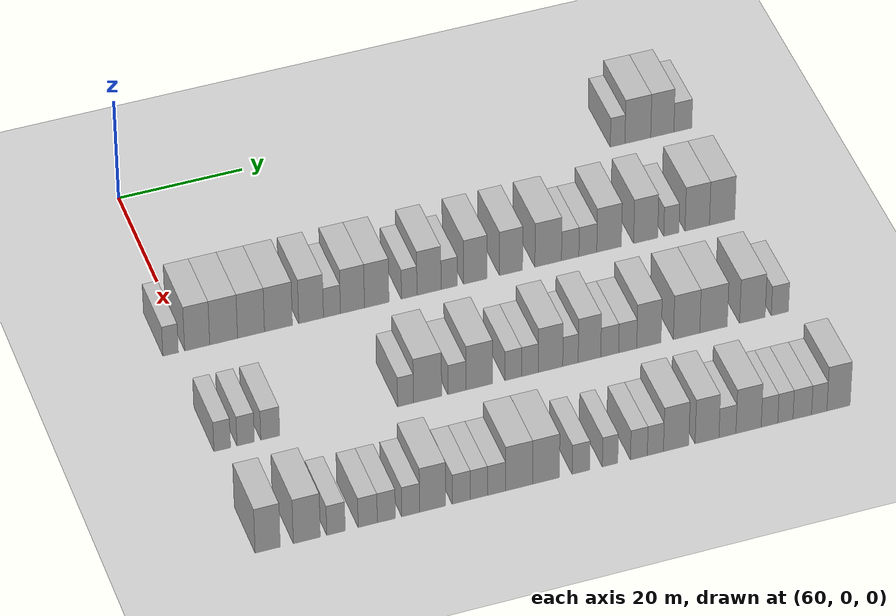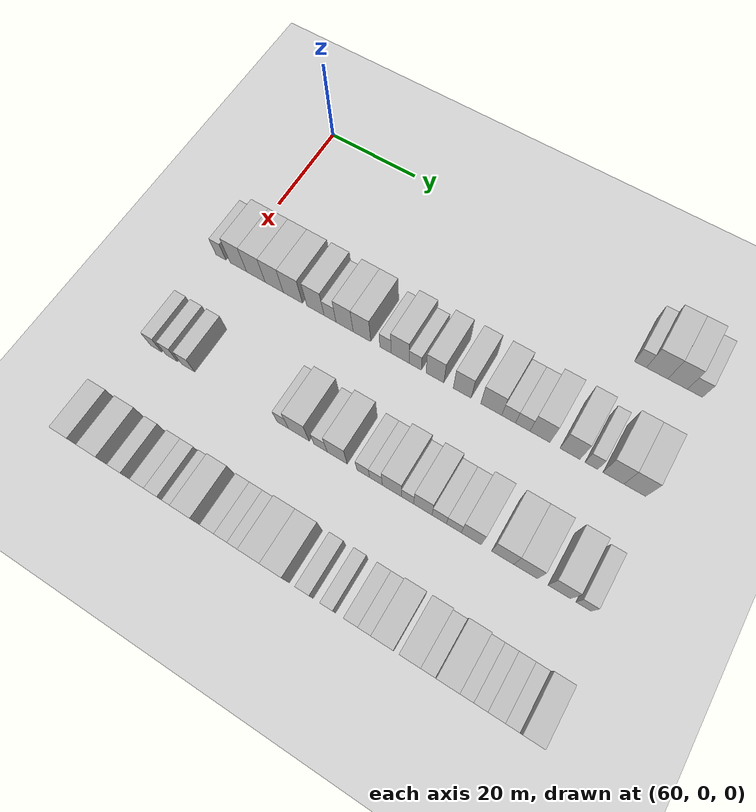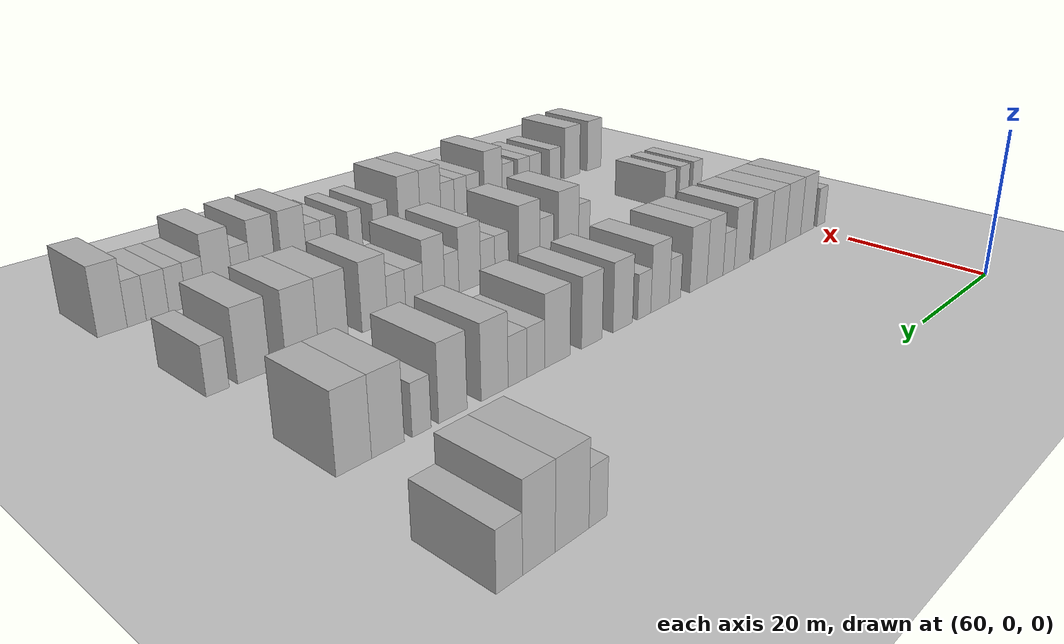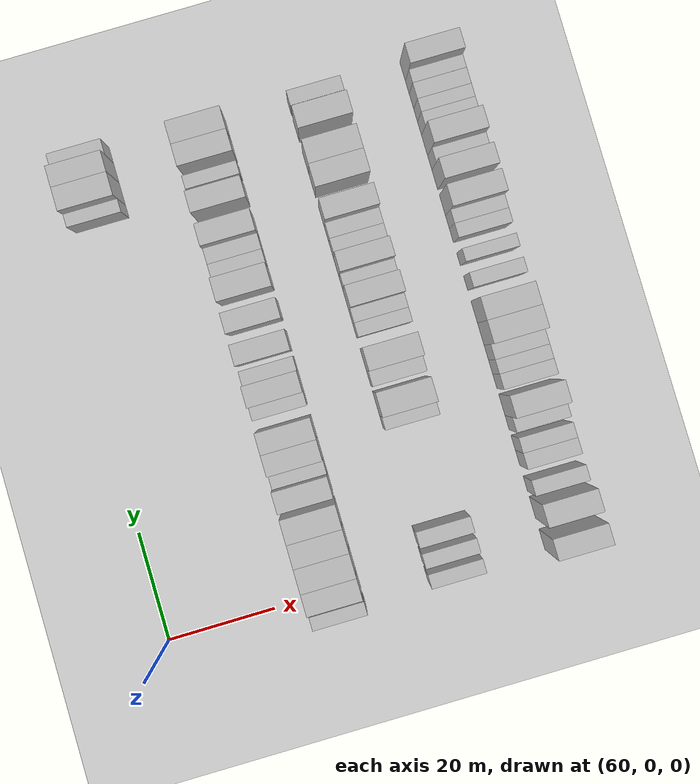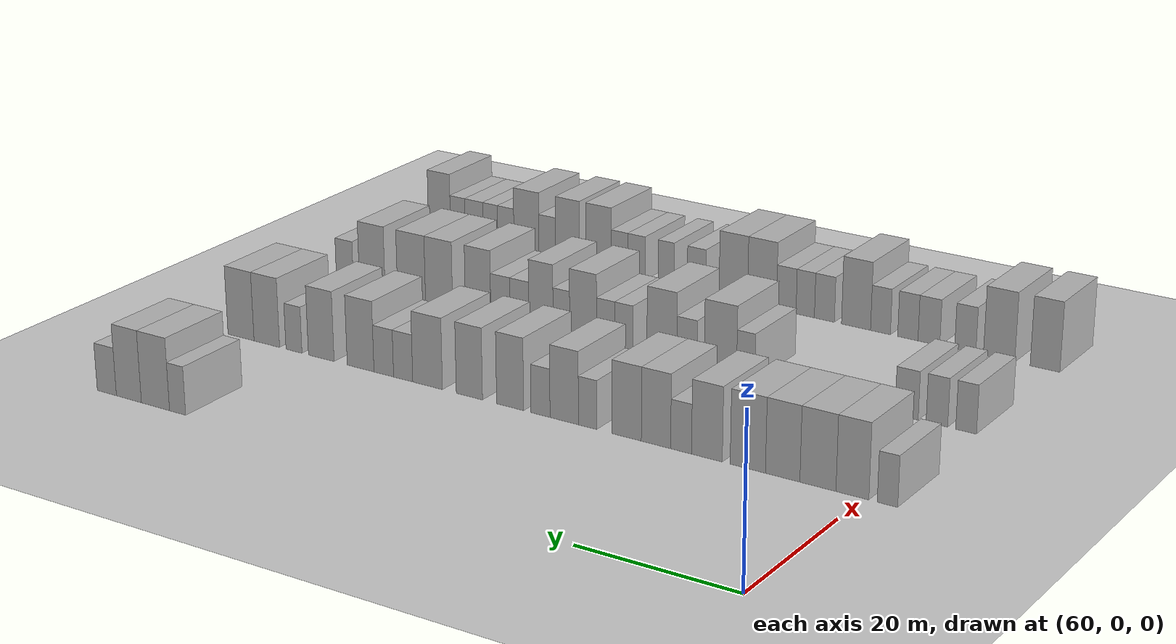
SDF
<sdf version="1.6">
 <world name="default">
  <include>
   <name>ground_plane_2</name>
   <uri>model://HANNAS_ground_plane</uri>
   <pose>100 0 0  0 0 0</pose>
  </include>
  <model name="building_480">
   <static>1</static>
   <pose>69.0000 77.1322 0 0.000000 0.000000 0.000000</pose>
   <link name="link">
    <pose>0 0 3.00 0 0 0</pose>
    <collision name="collision"><geometry><box><size>10.0000 2.4382 6.0000</size></box></geometry></collision>
    <visual name="visual">
     <cast_shadows>0</cast_shadows>
     <geometry><box><size>10.0000 2.4382 6.0000</size></box></geometry>
     <material>
      <script>
       <uri>model://HANNAS_wall/materials/scripts</uri>
       <uri>model://HANNAS_wall/materials/textures</uri>
       <name>vrc/HANNAS_wall</name>
      </script>
     </material>
    </visual>
   </link>
  </model>
  <model name="building_481">
   <static>1</static>
   <pose>69.0000 80.5037 0 0.000000 0.000000 0.000000</pose>
   <link name="link">
    <pose>0 0 4.50 0 0 0</pose>
    <collision name="collision"><geometry><box><size>10.0000 4.3048 9.0000</size></box></geometry></collision>
    <visual name="visual">
     <cast_shadows>0</cast_shadows>
     <geometry><box><size>10.0000 4.3048 9.0000</size></box></geometry>
     <material>
      <script>
       <uri>model://HANNAS_wall/materials/scripts</uri>
       <uri>model://HANNAS_wall/materials/textures</uri>
       <name>vrc/HANNAS_wall</name>
      </script>
     </material>
    </visual>
   </link>
  </model>
  <model name="building_482">
   <static>1</static>
   <pose>69.0000 84.5991 0 0.000000 0.000000 0.000000</pose>
   <link name="link">
    <pose>0 0 4.50 0 0 0</pose>
    <collision name="collision"><geometry><box><size>10.0000 3.8859 9.0000</size></box></geometry></collision>
    <visual name="visual">
     <cast_shadows>0</cast_shadows>
     <geometry><box><size>10.0000 3.8859 9.0000</size></box></geometry>
     <material>
      <script>
       <uri>model://HANNAS_wall/materials/scripts</uri>
       <uri>model://HANNAS_wall/materials/textures</uri>
       <name>vrc/HANNAS_wall</name>
      </script>
     </material>
    </visual>
   </link>
  </model>
  <model name="building_483">
   <static>1</static>
   <pose>69.0000 88.0368 0 0.000000 0.000000 0.000000</pose>
   <link name="link">
    <pose>0 0 3.00 0 0 0</pose>
    <collision name="collision"><geometry><box><size>10.0000 2.9896 6.0000</size></box></geometry></collision>
    <visual name="visual">
     <cast_shadows>0</cast_shadows>
     <geometry><box><size>10.0000 2.9896 6.0000</size></box></geometry>
     <material>
      <script>
       <uri>model://HANNAS_wall/materials/scripts</uri>
       <uri>model://HANNAS_wall/materials/textures</uri>
       <name>vrc/HANNAS_wall</name>
      </script>
     </material>
    </visual>
   </link>
  </model>
  <model name="building_653">
   <static>1</static>
   <pose>91.0000 -2.7565 0 0.000000 0.000000 0.000000</pose>
   <link name="link">
    <pose>0 0 3.00 0 0 0</pose>
    <collision name="collision"><geometry><box><size>10.0000 2.4277 6.0000</size></box></geometry></collision>
    <visual name="visual">
     <cast_shadows>0</cast_shadows>
     <geometry><box><size>10.0000 2.4277 6.0000</size></box></geometry>
     <material>
      <script>
       <uri>model://HANNAS_wall/materials/scripts</uri>
       <uri>model://HANNAS_wall/materials/textures</uri>
       <name>vrc/HANNAS_wall</name>
      </script>
     </material>
    </visual>
   </link>
  </model>
  <model name="building_654">
   <static>1</static>
   <pose>91.0000 1.4361 0 0.000000 0.000000 0.000000</pose>
   <link name="link">
    <pose>0 0 4.50 0 0 0</pose>
    <collision name="collision"><geometry><box><size>10.0000 3.9575 9.0000</size></box></geometry></collision>
    <visual name="visual">
     <cast_shadows>0</cast_shadows>
     <geometry><box><size>10.0000 3.9575 9.0000</size></box></geometry>
     <material>
      <script>
       <uri>model://HANNAS_wall/materials/scripts</uri>
       <uri>model://HANNAS_wall/materials/textures</uri>
       <name>vrc/HANNAS_wall</name>
      </script>
     </material>
    </visual>
   </link>
  </model>
  <model name="building_655">
   <static>1</static>
   <pose>91.0000 5.6165 0 0.000000 0.000000 0.000000</pose>
   <link name="link">
    <pose>0 0 4.50 0 0 0</pose>
    <collision name="collision"><geometry><box><size>10.0000 4.4033 9.0000</size></box></geometry></collision>
    <visual name="visual">
     <cast_shadows>0</cast_shadows>
     <geometry><box><size>10.0000 4.4033 9.0000</size></box></geometry>
     <material>
      <script>
       <uri>model://HANNAS_wall/materials/scripts</uri>
       <uri>model://HANNAS_wall/materials/textures</uri>
       <name>vrc/HANNAS_wall</name>
      </script>
     </material>
    </visual>
   </link>
  </model>
  <model name="building_656">
   <static>1</static>
   <pose>91.0000 9.9535 0 0.000000 0.000000 0.000000</pose>
   <link name="link">
    <pose>0 0 4.50 0 0 0</pose>
    <collision name="collision"><geometry><box><size>10.0000 4.2708 9.0000</size></box></geometry></collision>
    <visual name="visual">
     <cast_shadows>0</cast_shadows>
     <geometry><box><size>10.0000 4.2708 9.0000</size></box></geometry>
     <material>
      <script>
       <uri>model://HANNAS_wall/materials/scripts</uri>
       <uri>model://HANNAS_wall/materials/textures</uri>
       <name>vrc/HANNAS_wall</name>
      </script>
     </material>
    </visual>
   </link>
  </model>
  <model name="building_657">
   <static>1</static>
   <pose>91.0000 14.3061 0 0.000000 0.000000 0.000000</pose>
   <link name="link">
    <pose>0 0 4.50 0 0 0</pose>
    <collision name="collision"><geometry><box><size>10.0000 4.4345 9.0000</size></box></geometry></collision>
    <visual name="visual">
     <cast_shadows>0</cast_shadows>
     <geometry><box><size>10.0000 4.4345 9.0000</size></box></geometry>
     <material>
      <script>
       <uri>model://HANNAS_wall/materials/scripts</uri>
       <uri>model://HANNAS_wall/materials/textures</uri>
       <name>vrc/HANNAS_wall</name>
      </script>
     </material>
    </visual>
   </link>
  </model>
  <model name="building_658">
   <static>1</static>
   <pose>91.0000 19.4960 0 0.000000 0.000000 0.000000</pose>
   <link name="link">
    <pose>0 0 4.50 0 0 0</pose>
    <collision name="collision"><geometry><box><size>10.0000 3.9454 9.0000</size></box></geometry></collision>
    <visual name="visual">
     <cast_shadows>0</cast_shadows>
     <geometry><box><size>10.0000 3.9454 9.0000</size></box></geometry>
     <material>
      <script>
       <uri>model://HANNAS_wall/materials/scripts</uri>
       <uri>model://HANNAS_wall/materials/textures</uri>
       <name>vrc/HANNAS_wall</name>
      </script>
     </material>
    </visual>
   </link>
  </model>
  <model name="building_659">
   <static>1</static>
   <pose>91.0000 22.8226 0 0.000000 0.000000 0.000000</pose>
   <link name="link">
    <pose>0 0 3.00 0 0 0</pose>
    <collision name="collision"><geometry><box><size>10.0000 2.7078 6.0000</size></box></geometry></collision>
    <visual name="visual">
     <cast_shadows>0</cast_shadows>
     <geometry><box><size>10.0000 2.7078 6.0000</size></box></geometry>
     <material>
      <script>
       <uri>model://HANNAS_wall/materials/scripts</uri>
       <uri>model://HANNAS_wall/materials/textures</uri>
       <name>vrc/HANNAS_wall</name>
      </script>
     </material>
    </visual>
   </link>
  </model>
  <model name="building_660">
   <static>1</static>
   <pose>91.0000 26.0993 0 0.000000 0.000000 0.000000</pose>
   <link name="link">
    <pose>0 0 4.50 0 0 0</pose>
    <collision name="collision"><geometry><box><size>10.0000 3.8456 9.0000</size></box></geometry></collision>
    <visual name="visual">
     <cast_shadows>0</cast_shadows>
     <geometry><box><size>10.0000 3.8456 9.0000</size></box></geometry>
     <material>
      <script>
       <uri>model://HANNAS_wall/materials/scripts</uri>
       <uri>model://HANNAS_wall/materials/textures</uri>
       <name>vrc/HANNAS_wall</name>
      </script>
     </material>
    </visual>
   </link>
  </model>
  <model name="building_661">
   <static>1</static>
   <pose>91.0000 29.9905 0 0.000000 0.000000 0.000000</pose>
   <link name="link">
    <pose>0 0 4.50 0 0 0</pose>
    <collision name="collision"><geometry><box><size>10.0000 3.9366 9.0000</size></box></geometry></collision>
    <visual name="visual">
     <cast_shadows>0</cast_shadows>
     <geometry><box><size>10.0000 3.9366 9.0000</size></box></geometry>
     <material>
      <script>
       <uri>model://HANNAS_wall/materials/scripts</uri>
       <uri>model://HANNAS_wall/materials/textures</uri>
       <name>vrc/HANNAS_wall</name>
      </script>
     </material>
    </visual>
   </link>
  </model>
  <model name="building_662">
   <static>1</static>
   <pose>91.0000 35.2042 0 0.000000 0.000000 0.000000</pose>
   <link name="link">
    <pose>0 0 3.00 0 0 0</pose>
    <collision name="collision"><geometry><box><size>10.0000 2.4910 6.0000</size></box></geometry></collision>
    <visual name="visual">
     <cast_shadows>0</cast_shadows>
     <geometry><box><size>10.0000 2.4910 6.0000</size></box></geometry>
     <material>
      <script>
       <uri>model://HANNAS_wall/materials/scripts</uri>
       <uri>model://HANNAS_wall/materials/textures</uri>
       <name>vrc/HANNAS_wall</name>
      </script>
     </material>
    </visual>
   </link>
  </model>
  <model name="building_663">
   <static>1</static>
   <pose>91.0000 38.3889 0 0.000000 0.000000 0.000000</pose>
   <link name="link">
    <pose>0 0 4.50 0 0 0</pose>
    <collision name="collision"><geometry><box><size>10.0000 3.8784 9.0000</size></box></geometry></collision>
    <visual name="visual">
     <cast_shadows>0</cast_shadows>
     <geometry><box><size>10.0000 3.8784 9.0000</size></box></geometry>
     <material>
      <script>
       <uri>model://HANNAS_wall/materials/scripts</uri>
       <uri>model://HANNAS_wall/materials/textures</uri>
       <name>vrc/HANNAS_wall</name>
      </script>
     </material>
    </visual>
   </link>
  </model>
  <model name="building_664">
   <static>1</static>
   <pose>91.0000 41.6538 0 0.000000 0.000000 0.000000</pose>
   <link name="link">
    <pose>0 0 3.00 0 0 0</pose>
    <collision name="collision"><geometry><box><size>10.0000 2.6514 6.0000</size></box></geometry></collision>
    <visual name="visual">
     <cast_shadows>0</cast_shadows>
     <geometry><box><size>10.0000 2.6514 6.0000</size></box></geometry>
     <material>
      <script>
       <uri>model://HANNAS_wall/materials/scripts</uri>
       <uri>model://HANNAS_wall/materials/textures</uri>
       <name>vrc/HANNAS_wall</name>
      </script>
     </material>
    </visual>
   </link>
  </model>
  <model name="building_665">
   <static>1</static>
   <pose>91.0000 45.8766 0 0.000000 0.000000 0.000000</pose>
   <link name="link">
    <pose>0 0 4.50 0 0 0</pose>
    <collision name="collision"><geometry><box><size>10.0000 3.7941 9.0000</size></box></geometry></collision>
    <visual name="visual">
     <cast_shadows>0</cast_shadows>
     <geometry><box><size>10.0000 3.7941 9.0000</size></box></geometry>
     <material>
      <script>
       <uri>model://HANNAS_wall/materials/scripts</uri>
       <uri>model://HANNAS_wall/materials/textures</uri>
       <name>vrc/HANNAS_wall</name>
      </script>
     </material>
    </visual>
   </link>
  </model>
  <model name="building_666">
   <static>1</static>
   <pose>91.0000 51.6459 0 0.000000 0.000000 0.000000</pose>
   <link name="link">
    <pose>0 0 4.50 0 0 0</pose>
    <collision name="collision"><geometry><box><size>10.0000 3.7446 9.0000</size></box></geometry></collision>
    <visual name="visual">
     <cast_shadows>0</cast_shadows>
     <geometry><box><size>10.0000 3.7446 9.0000</size></box></geometry>
     <material>
      <script>
       <uri>model://HANNAS_wall/materials/scripts</uri>
       <uri>model://HANNAS_wall/materials/textures</uri>
       <name>vrc/HANNAS_wall</name>
      </script>
     </material>
    </visual>
   </link>
  </model>
  <model name="building_667">
   <static>1</static>
   <pose>91.0000 57.6847 0 0.000000 0.000000 0.000000</pose>
   <link name="link">
    <pose>0 0 4.50 0 0 0</pose>
    <collision name="collision"><geometry><box><size>10.0000 4.3330 9.0000</size></box></geometry></collision>
    <visual name="visual">
     <cast_shadows>0</cast_shadows>
     <geometry><box><size>10.0000 4.3330 9.0000</size></box></geometry>
     <material>
      <script>
       <uri>model://HANNAS_wall/materials/scripts</uri>
       <uri>model://HANNAS_wall/materials/textures</uri>
       <name>vrc/HANNAS_wall</name>
      </script>
     </material>
    </visual>
   </link>
  </model>
  <model name="building_668">
   <static>1</static>
   <pose>91.0000 61.2664 0 0.000000 0.000000 0.000000</pose>
   <link name="link">
    <pose>0 0 3.00 0 0 0</pose>
    <collision name="collision"><geometry><box><size>10.0000 2.8304 6.0000</size></box></geometry></collision>
    <visual name="visual">
     <cast_shadows>0</cast_shadows>
     <geometry><box><size>10.0000 2.8304 6.0000</size></box></geometry>
     <material>
      <script>
       <uri>model://HANNAS_wall/materials/scripts</uri>
       <uri>model://HANNAS_wall/materials/textures</uri>
       <name>vrc/HANNAS_wall</name>
      </script>
     </material>
    </visual>
   </link>
  </model>
  <model name="building_669">
   <static>1</static>
   <pose>91.0000 64.1423 0 0.000000 0.000000 0.000000</pose>
   <link name="link">
    <pose>0 0 3.00 0 0 0</pose>
    <collision name="collision"><geometry><box><size>10.0000 2.9213 6.0000</size></box></geometry></collision>
    <visual name="visual">
     <cast_shadows>0</cast_shadows>
     <geometry><box><size>10.0000 2.9213 6.0000</size></box></geometry>
     <material>
      <script>
       <uri>model://HANNAS_wall/materials/scripts</uri>
       <uri>model://HANNAS_wall/materials/textures</uri>
       <name>vrc/HANNAS_wall</name>
      </script>
     </material>
    </visual>
   </link>
  </model>
  <model name="building_670">
   <static>1</static>
   <pose>91.0000 67.6167 0 0.000000 0.000000 0.000000</pose>
   <link name="link">
    <pose>0 0 4.50 0 0 0</pose>
    <collision name="collision"><geometry><box><size>10.0000 4.0274 9.0000</size></box></geometry></collision>
    <visual name="visual">
     <cast_shadows>0</cast_shadows>
     <geometry><box><size>10.0000 4.0274 9.0000</size></box></geometry>
     <material>
      <script>
       <uri>model://HANNAS_wall/materials/scripts</uri>
       <uri>model://HANNAS_wall/materials/textures</uri>
       <name>vrc/HANNAS_wall</name>
      </script>
     </material>
    </visual>
   </link>
  </model>
  <model name="building_671">
   <static>1</static>
   <pose>91.0000 73.6029 0 0.000000 0.000000 0.000000</pose>
   <link name="link">
    <pose>0 0 4.50 0 0 0</pose>
    <collision name="collision"><geometry><box><size>10.0000 3.9450 9.0000</size></box></geometry></collision>
    <visual name="visual">
     <cast_shadows>0</cast_shadows>
     <geometry><box><size>10.0000 3.9450 9.0000</size></box></geometry>
     <material>
      <script>
       <uri>model://HANNAS_wall/materials/scripts</uri>
       <uri>model://HANNAS_wall/materials/textures</uri>
       <name>vrc/HANNAS_wall</name>
      </script>
     </material>
    </visual>
   </link>
  </model>
  <model name="building_672">
   <static>1</static>
   <pose>91.0000 77.8221 0 0.000000 0.000000 0.000000</pose>
   <link name="link">
    <pose>0 0 3.00 0 0 0</pose>
    <collision name="collision"><geometry><box><size>10.0000 2.4935 6.0000</size></box></geometry></collision>
    <visual name="visual">
     <cast_shadows>0</cast_shadows>
     <geometry><box><size>10.0000 2.4935 6.0000</size></box></geometry>
     <material>
      <script>
       <uri>model://HANNAS_wall/materials/scripts</uri>
       <uri>model://HANNAS_wall/materials/textures</uri>
       <name>vrc/HANNAS_wall</name>
      </script>
     </material>
    </visual>
   </link>
  </model>
  <model name="building_673">
   <static>1</static>
   <pose>91.0000 82.0843 0 0.000000 0.000000 0.000000</pose>
   <link name="link">
    <pose>0 0 4.50 0 0 0</pose>
    <collision name="collision"><geometry><box><size>10.0000 4.0307 9.0000</size></box></geometry></collision>
    <visual name="visual">
     <cast_shadows>0</cast_shadows>
     <geometry><box><size>10.0000 4.0307 9.0000</size></box></geometry>
     <material>
      <script>
       <uri>model://HANNAS_wall/materials/scripts</uri>
       <uri>model://HANNAS_wall/materials/textures</uri>
       <name>vrc/HANNAS_wall</name>
      </script>
     </material>
    </visual>
   </link>
  </model>
  <model name="building_674">
   <static>1</static>
   <pose>91.0000 86.1808 0 0.000000 0.000000 0.000000</pose>
   <link name="link">
    <pose>0 0 4.50 0 0 0</pose>
    <collision name="collision"><geometry><box><size>10.0000 4.1624 9.0000</size></box></geometry></collision>
    <visual name="visual">
     <cast_shadows>0</cast_shadows>
     <geometry><box><size>10.0000 4.1624 9.0000</size></box></geometry>
     <material>
      <script>
       <uri>model://HANNAS_wall/materials/scripts</uri>
       <uri>model://HANNAS_wall/materials/textures</uri>
       <name>vrc/HANNAS_wall</name>
      </script>
     </material>
    </visual>
   </link>
  </model>
  <model name="building_841">
   <static>1</static>
   <pose>113.0000 -1.5470 0 0.000000 0.000000 0.000000</pose>
   <link name="link">
    <pose>0 0 3.00 0 0 0</pose>
    <collision name="collision"><geometry><box><size>10.0000 2.5776 6.0000</size></box></geometry></collision>
    <visual name="visual">
     <cast_shadows>0</cast_shadows>
     <geometry><box><size>10.0000 2.5776 6.0000</size></box></geometry>
     <material>
      <script>
       <uri>model://HANNAS_wall/materials/scripts</uri>
       <uri>model://HANNAS_wall/materials/textures</uri>
       <name>vrc/HANNAS_wall</name>
      </script>
     </material>
    </visual>
   </link>
  </model>
  <model name="building_842">
   <static>1</static>
   <pose>113.0000 2.0966 0 0.000000 0.000000 0.000000</pose>
   <link name="link">
    <pose>0 0 3.00 0 0 0</pose>
    <collision name="collision"><geometry><box><size>10.0000 2.7095 6.0000</size></box></geometry></collision>
    <visual name="visual">
     <cast_shadows>0</cast_shadows>
     <geometry><box><size>10.0000 2.7095 6.0000</size></box></geometry>
     <material>
      <script>
       <uri>model://HANNAS_wall/materials/scripts</uri>
       <uri>model://HANNAS_wall/materials/textures</uri>
       <name>vrc/HANNAS_wall</name>
      </script>
     </material>
    </visual>
   </link>
  </model>
  <model name="building_843">
   <static>1</static>
   <pose>113.0000 5.9287 0 0.000000 0.000000 0.000000</pose>
   <link name="link">
    <pose>0 0 3.00 0 0 0</pose>
    <collision name="collision"><geometry><box><size>10.0000 2.9547 6.0000</size></box></geometry></collision>
    <visual name="visual">
     <cast_shadows>0</cast_shadows>
     <geometry><box><size>10.0000 2.9547 6.0000</size></box></geometry>
     <material>
      <script>
       <uri>model://HANNAS_wall/materials/scripts</uri>
       <uri>model://HANNAS_wall/materials/textures</uri>
       <name>vrc/HANNAS_wall</name>
      </script>
     </material>
    </visual>
   </link>
  </model>
  <model name="building_844">
   <static>1</static>
   <pose>113.0000 27.1335 0 0.000000 0.000000 0.000000</pose>
   <link name="link">
    <pose>0 0 3.00 0 0 0</pose>
    <collision name="collision"><geometry><box><size>10.0000 2.4849 6.0000</size></box></geometry></collision>
    <visual name="visual">
     <cast_shadows>0</cast_shadows>
     <geometry><box><size>10.0000 2.4849 6.0000</size></box></geometry>
     <material>
      <script>
       <uri>model://HANNAS_wall/materials/scripts</uri>
       <uri>model://HANNAS_wall/materials/textures</uri>
       <name>vrc/HANNAS_wall</name>
      </script>
     </material>
    </visual>
   </link>
  </model>
  <model name="building_845">
   <static>1</static>
   <pose>113.0000 30.6043 0 0.000000 0.000000 0.000000</pose>
   <link name="link">
    <pose>0 0 4.50 0 0 0</pose>
    <collision name="collision"><geometry><box><size>10.0000 4.4568 9.0000</size></box></geometry></collision>
    <visual name="visual">
     <cast_shadows>0</cast_shadows>
     <geometry><box><size>10.0000 4.4568 9.0000</size></box></geometry>
     <material>
      <script>
       <uri>model://HANNAS_wall/materials/scripts</uri>
       <uri>model://HANNAS_wall/materials/textures</uri>
       <name>vrc/HANNAS_wall</name>
      </script>
     </material>
    </visual>
   </link>
  </model>
  <model name="building_846">
   <static>1</static>
   <pose>113.0000 35.2597 0 0.000000 0.000000 0.000000</pose>
   <link name="link">
    <pose>0 0 3.00 0 0 0</pose>
    <collision name="collision"><geometry><box><size>10.0000 2.8541 6.0000</size></box></geometry></collision>
    <visual name="visual">
     <cast_shadows>0</cast_shadows>
     <geometry><box><size>10.0000 2.8541 6.0000</size></box></geometry>
     <material>
      <script>
       <uri>model://HANNAS_wall/materials/scripts</uri>
       <uri>model://HANNAS_wall/materials/textures</uri>
       <name>vrc/HANNAS_wall</name>
      </script>
     </material>
    </visual>
   </link>
  </model>
  <model name="building_847">
   <static>1</static>
   <pose>113.0000 38.7917 0 0.000000 0.000000 0.000000</pose>
   <link name="link">
    <pose>0 0 4.50 0 0 0</pose>
    <collision name="collision"><geometry><box><size>10.0000 4.2098 9.0000</size></box></geometry></collision>
    <visual name="visual">
     <cast_shadows>0</cast_shadows>
     <geometry><box><size>10.0000 4.2098 9.0000</size></box></geometry>
     <material>
      <script>
       <uri>model://HANNAS_wall/materials/scripts</uri>
       <uri>model://HANNAS_wall/materials/textures</uri>
       <name>vrc/HANNAS_wall</name>
      </script>
     </material>
    </visual>
   </link>
  </model>
  <model name="building_848">
   <static>1</static>
   <pose>113.0000 44.2140 0 0.000000 0.000000 0.000000</pose>
   <link name="link">
    <pose>0 0 3.00 0 0 0</pose>
    <collision name="collision"><geometry><box><size>10.0000 2.6349 6.0000</size></box></geometry></collision>
    <visual name="visual">
     <cast_shadows>0</cast_shadows>
     <geometry><box><size>10.0000 2.6349 6.0000</size></box></geometry>
     <material>
      <script>
       <uri>model://HANNAS_wall/materials/scripts</uri>
       <uri>model://HANNAS_wall/materials/textures</uri>
       <name>vrc/HANNAS_wall</name>
      </script>
     </material>
    </visual>
   </link>
  </model>
  <model name="building_849">
   <static>1</static>
   <pose>113.0000 46.8538 0 0.000000 0.000000 0.000000</pose>
   <link name="link">
    <pose>0 0 3.00 0 0 0</pose>
    <collision name="collision"><geometry><box><size>10.0000 2.6447 6.0000</size></box></geometry></collision>
    <visual name="visual">
     <cast_shadows>0</cast_shadows>
     <geometry><box><size>10.0000 2.6447 6.0000</size></box></geometry>
     <material>
      <script>
       <uri>model://HANNAS_wall/materials/scripts</uri>
       <uri>model://HANNAS_wall/materials/textures</uri>
       <name>vrc/HANNAS_wall</name>
      </script>
     </material>
    </visual>
   </link>
  </model>
  <model name="building_850">
   <static>1</static>
   <pose>113.0000 50.1375 0 0.000000 0.000000 0.000000</pose>
   <link name="link">
    <pose>0 0 4.50 0 0 0</pose>
    <collision name="collision"><geometry><box><size>10.0000 3.9228 9.0000</size></box></geometry></collision>
    <visual name="visual">
     <cast_shadows>0</cast_shadows>
     <geometry><box><size>10.0000 3.9228 9.0000</size></box></geometry>
     <material>
      <script>
       <uri>model://HANNAS_wall/materials/scripts</uri>
       <uri>model://HANNAS_wall/materials/textures</uri>
       <name>vrc/HANNAS_wall</name>
      </script>
     </material>
    </visual>
   </link>
  </model>
  <model name="building_851">
   <static>1</static>
   <pose>113.0000 53.3275 0 0.000000 0.000000 0.000000</pose>
   <link name="link">
    <pose>0 0 3.00 0 0 0</pose>
    <collision name="collision"><geometry><box><size>10.0000 2.4571 6.0000</size></box></geometry></collision>
    <visual name="visual">
     <cast_shadows>0</cast_shadows>
     <geometry><box><size>10.0000 2.4571 6.0000</size></box></geometry>
     <material>
      <script>
       <uri>model://HANNAS_wall/materials/scripts</uri>
       <uri>model://HANNAS_wall/materials/textures</uri>
       <name>vrc/HANNAS_wall</name>
      </script>
     </material>
    </visual>
   </link>
  </model>
  <model name="building_852">
   <static>1</static>
   <pose>113.0000 56.3704 0 0.000000 0.000000 0.000000</pose>
   <link name="link">
    <pose>0 0 4.50 0 0 0</pose>
    <collision name="collision"><geometry><box><size>10.0000 3.6287 9.0000</size></box></geometry></collision>
    <visual name="visual">
     <cast_shadows>0</cast_shadows>
     <geometry><box><size>10.0000 3.6287 9.0000</size></box></geometry>
     <material>
      <script>
       <uri>model://HANNAS_wall/materials/scripts</uri>
       <uri>model://HANNAS_wall/materials/textures</uri>
       <name>vrc/HANNAS_wall</name>
      </script>
     </material>
    </visual>
   </link>
  </model>
  <model name="building_853">
   <static>1</static>
   <pose>113.0000 59.6178 0 0.000000 0.000000 0.000000</pose>
   <link name="link">
    <pose>0 0 3.00 0 0 0</pose>
    <collision name="collision"><geometry><box><size>10.0000 2.8660 6.0000</size></box></geometry></collision>
    <visual name="visual">
     <cast_shadows>0</cast_shadows>
     <geometry><box><size>10.0000 2.8660 6.0000</size></box></geometry>
     <material>
      <script>
       <uri>model://HANNAS_wall/materials/scripts</uri>
       <uri>model://HANNAS_wall/materials/textures</uri>
       <name>vrc/HANNAS_wall</name>
      </script>
     </material>
    </visual>
   </link>
  </model>
  <model name="building_854">
   <static>1</static>
   <pose>113.0000 62.5063 0 0.000000 0.000000 0.000000</pose>
   <link name="link">
    <pose>0 0 3.00 0 0 0</pose>
    <collision name="collision"><geometry><box><size>10.0000 2.9109 6.0000</size></box></geometry></collision>
    <visual name="visual">
     <cast_shadows>0</cast_shadows>
     <geometry><box><size>10.0000 2.9109 6.0000</size></box></geometry>
     <material>
      <script>
       <uri>model://HANNAS_wall/materials/scripts</uri>
       <uri>model://HANNAS_wall/materials/textures</uri>
       <name>vrc/HANNAS_wall</name>
      </script>
     </material>
    </visual>
   </link>
  </model>
  <model name="building_855">
   <static>1</static>
   <pose>113.0000 65.9159 0 0.000000 0.000000 0.000000</pose>
   <link name="link">
    <pose>0 0 4.50 0 0 0</pose>
    <collision name="collision"><geometry><box><size>10.0000 3.9084 9.0000</size></box></geometry></collision>
    <visual name="visual">
     <cast_shadows>0</cast_shadows>
     <geometry><box><size>10.0000 3.9084 9.0000</size></box></geometry>
     <material>
      <script>
       <uri>model://HANNAS_wall/materials/scripts</uri>
       <uri>model://HANNAS_wall/materials/textures</uri>
       <name>vrc/HANNAS_wall</name>
      </script>
     </material>
    </visual>
   </link>
  </model>
  <model name="building_856">
   <static>1</static>
   <pose>113.0000 72.0000 0 0.000000 0.000000 0.000000</pose>
   <link name="link">
    <pose>0 0 4.50 0 0 0</pose>
    <collision name="collision"><geometry><box><size>10.0000 4.2596 9.0000</size></box></geometry></collision>
    <visual name="visual">
     <cast_shadows>0</cast_shadows>
     <geometry><box><size>10.0000 4.2596 9.0000</size></box></geometry>
     <material>
      <script>
       <uri>model://HANNAS_wall/materials/scripts</uri>
       <uri>model://HANNAS_wall/materials/textures</uri>
       <name>vrc/HANNAS_wall</name>
      </script>
     </material>
    </visual>
   </link>
  </model>
  <model name="building_857">
   <static>1</static>
   <pose>113.0000 76.3529 0 0.000000 0.000000 0.000000</pose>
   <link name="link">
    <pose>0 0 4.50 0 0 0</pose>
    <collision name="collision"><geometry><box><size>10.0000 4.4462 9.0000</size></box></geometry></collision>
    <visual name="visual">
     <cast_shadows>0</cast_shadows>
     <geometry><box><size>10.0000 4.4462 9.0000</size></box></geometry>
     <material>
      <script>
       <uri>model://HANNAS_wall/materials/scripts</uri>
       <uri>model://HANNAS_wall/materials/textures</uri>
       <name>vrc/HANNAS_wall</name>
      </script>
     </material>
    </visual>
   </link>
  </model>
  <model name="building_858">
   <static>1</static>
   <pose>113.0000 82.6550 0 0.000000 0.000000 0.000000</pose>
   <link name="link">
    <pose>0 0 4.50 0 0 0</pose>
    <collision name="collision"><geometry><box><size>10.0000 4.1581 9.0000</size></box></geometry></collision>
    <visual name="visual">
     <cast_shadows>0</cast_shadows>
     <geometry><box><size>10.0000 4.1581 9.0000</size></box></geometry>
     <material>
      <script>
       <uri>model://HANNAS_wall/materials/scripts</uri>
       <uri>model://HANNAS_wall/materials/textures</uri>
       <name>vrc/HANNAS_wall</name>
      </script>
     </material>
    </visual>
   </link>
  </model>
  <model name="building_859">
   <static>1</static>
   <pose>113.0000 87.1227 0 0.000000 0.000000 0.000000</pose>
   <link name="link">
    <pose>0 0 3.00 0 0 0</pose>
    <collision name="collision"><geometry><box><size>10.0000 2.7773 6.0000</size></box></geometry></collision>
    <visual name="visual">
     <cast_shadows>0</cast_shadows>
     <geometry><box><size>10.0000 2.7773 6.0000</size></box></geometry>
     <material>
      <script>
       <uri>model://HANNAS_wall/materials/scripts</uri>
       <uri>model://HANNAS_wall/materials/textures</uri>
       <name>vrc/HANNAS_wall</name>
      </script>
     </material>
    </visual>
   </link>
  </model>
  <model name="building_1029">
   <static>1</static>
   <pose>135.0000 -1.5488 0 0.000000 0.000000 0.000000</pose>
   <link name="link">
    <pose>0 0 4.50 0 0 0</pose>
    <collision name="collision"><geometry><box><size>10.0000 3.8412 9.0000</size></box></geometry></collision>
    <visual name="visual">
     <cast_shadows>0</cast_shadows>
     <geometry><box><size>10.0000 3.8412 9.0000</size></box></geometry>
     <material>
      <script>
       <uri>model://HANNAS_wall/materials/scripts</uri>
       <uri>model://HANNAS_wall/materials/textures</uri>
       <name>vrc/HANNAS_wall</name>
      </script>
     </material>
    </visual>
   </link>
  </model>
  <model name="building_1030">
   <static>1</static>
   <pose>135.0000 4.4389 0 0.000000 0.000000 0.000000</pose>
   <link name="link">
    <pose>0 0 4.50 0 0 0</pose>
    <collision name="collision"><geometry><box><size>10.0000 4.1342 9.0000</size></box></geometry></collision>
    <visual name="visual">
     <cast_shadows>0</cast_shadows>
     <geometry><box><size>10.0000 4.1342 9.0000</size></box></geometry>
     <material>
      <script>
       <uri>model://HANNAS_wall/materials/scripts</uri>
       <uri>model://HANNAS_wall/materials/textures</uri>
       <name>vrc/HANNAS_wall</name>
      </script>
     </material>
    </visual>
   </link>
  </model>
  <model name="building_1031">
   <static>1</static>
   <pose>135.0000 8.9220 0 0.000000 0.000000 0.000000</pose>
   <link name="link">
    <pose>0 0 3.00 0 0 0</pose>
    <collision name="collision"><geometry><box><size>10.0000 2.8319 6.0000</size></box></geometry></collision>
    <visual name="visual">
     <cast_shadows>0</cast_shadows>
     <geometry><box><size>10.0000 2.8319 6.0000</size></box></geometry>
     <material>
      <script>
       <uri>model://HANNAS_wall/materials/scripts</uri>
       <uri>model://HANNAS_wall/materials/textures</uri>
       <name>vrc/HANNAS_wall</name>
      </script>
     </material>
    </visual>
   </link>
  </model>
  <model name="building_1032">
   <static>1</static>
   <pose>135.0000 13.8146 0 0.000000 0.000000 0.000000</pose>
   <link name="link">
    <pose>0 0 3.00 0 0 0</pose>
    <collision name="collision"><geometry><box><size>10.0000 2.9534 6.0000</size></box></geometry></collision>
    <visual name="visual">
     <cast_shadows>0</cast_shadows>
     <geometry><box><size>10.0000 2.9534 6.0000</size></box></geometry>
     <material>
      <script>
       <uri>model://HANNAS_wall/materials/scripts</uri>
       <uri>model://HANNAS_wall/materials/textures</uri>
       <name>vrc/HANNAS_wall</name>
      </script>
     </material>
    </visual>
   </link>
  </model>
  <model name="building_1033">
   <static>1</static>
   <pose>135.0000 16.6819 0 0.000000 0.000000 0.000000</pose>
   <link name="link">
    <pose>0 0 3.00 0 0 0</pose>
    <collision name="collision"><geometry><box><size>10.0000 2.7812 6.0000</size></box></geometry></collision>
    <visual name="visual">
     <cast_shadows>0</cast_shadows>
     <geometry><box><size>10.0000 2.7812 6.0000</size></box></geometry>
     <material>
      <script>
       <uri>model://HANNAS_wall/materials/scripts</uri>
       <uri>model://HANNAS_wall/materials/textures</uri>
       <name>vrc/HANNAS_wall</name>
      </script>
     </material>
    </visual>
   </link>
  </model>
  <model name="building_1034">
   <static>1</static>
   <pose>135.0000 20.4473 0 0.000000 0.000000 0.000000</pose>
   <link name="link">
    <pose>0 0 3.00 0 0 0</pose>
    <collision name="collision"><geometry><box><size>10.0000 2.7495 6.0000</size></box></geometry></collision>
    <visual name="visual">
     <cast_shadows>0</cast_shadows>
     <geometry><box><size>10.0000 2.7495 6.0000</size></box></geometry>
     <material>
      <script>
       <uri>model://HANNAS_wall/materials/scripts</uri>
       <uri>model://HANNAS_wall/materials/textures</uri>
       <name>vrc/HANNAS_wall</name>
      </script>
     </material>
    </visual>
   </link>
  </model>
  <model name="building_1035">
   <static>1</static>
   <pose>135.0000 23.8547 0 0.000000 0.000000 0.000000</pose>
   <link name="link">
    <pose>0 0 4.50 0 0 0</pose>
    <collision name="collision"><geometry><box><size>10.0000 4.0653 9.0000</size></box></geometry></collision>
    <visual name="visual">
     <cast_shadows>0</cast_shadows>
     <geometry><box><size>10.0000 4.0653 9.0000</size></box></geometry>
     <material>
      <script>
       <uri>model://HANNAS_wall/materials/scripts</uri>
       <uri>model://HANNAS_wall/materials/textures</uri>
       <name>vrc/HANNAS_wall</name>
      </script>
     </material>
    </visual>
   </link>
  </model>
  <model name="building_1036">
   <static>1</static>
   <pose>135.0000 28.3048 0 0.000000 0.000000 0.000000</pose>
   <link name="link">
    <pose>0 0 3.00 0 0 0</pose>
    <collision name="collision"><geometry><box><size>10.0000 2.8350 6.0000</size></box></geometry></collision>
    <visual name="visual">
     <cast_shadows>0</cast_shadows>
     <geometry><box><size>10.0000 2.8350 6.0000</size></box></geometry>
     <material>
      <script>
       <uri>model://HANNAS_wall/materials/scripts</uri>
       <uri>model://HANNAS_wall/materials/textures</uri>
       <name>vrc/HANNAS_wall</name>
      </script>
     </material>
    </visual>
   </link>
  </model>
  <model name="building_1037">
   <static>1</static>
   <pose>135.0000 31.0374 0 0.000000 0.000000 0.000000</pose>
   <link name="link">
    <pose>0 0 3.00 0 0 0</pose>
    <collision name="collision"><geometry><box><size>10.0000 2.6302 6.0000</size></box></geometry></collision>
    <visual name="visual">
     <cast_shadows>0</cast_shadows>
     <geometry><box><size>10.0000 2.6302 6.0000</size></box></geometry>
     <material>
      <script>
       <uri>model://HANNAS_wall/materials/scripts</uri>
       <uri>model://HANNAS_wall/materials/textures</uri>
       <name>vrc/HANNAS_wall</name>
      </script>
     </material>
    </visual>
   </link>
  </model>
  <model name="building_1038">
   <static>1</static>
   <pose>135.0000 33.7722 0 0.000000 0.000000 0.000000</pose>
   <link name="link">
    <pose>0 0 3.00 0 0 0</pose>
    <collision name="collision"><geometry><box><size>10.0000 2.8395 6.0000</size></box></geometry></collision>
    <visual name="visual">
     <cast_shadows>0</cast_shadows>
     <geometry><box><size>10.0000 2.8395 6.0000</size></box></geometry>
     <material>
      <script>
       <uri>model://HANNAS_wall/materials/scripts</uri>
       <uri>model://HANNAS_wall/materials/textures</uri>
       <name>vrc/HANNAS_wall</name>
      </script>
     </material>
    </visual>
   </link>
  </model>
  <model name="building_1039">
   <static>1</static>
   <pose>135.0000 37.3011 0 0.000000 0.000000 0.000000</pose>
   <link name="link">
    <pose>0 0 4.50 0 0 0</pose>
    <collision name="collision"><geometry><box><size>10.0000 4.2184 9.0000</size></box></geometry></collision>
    <visual name="visual">
     <cast_shadows>0</cast_shadows>
     <geometry><box><size>10.0000 4.2184 9.0000</size></box></geometry>
     <material>
      <script>
       <uri>model://HANNAS_wall/materials/scripts</uri>
       <uri>model://HANNAS_wall/materials/textures</uri>
       <name>vrc/HANNAS_wall</name>
      </script>
     </material>
    </visual>
   </link>
  </model>
  <model name="building_1040">
   <static>1</static>
   <pose>135.0000 41.5095 0 0.000000 0.000000 0.000000</pose>
   <link name="link">
    <pose>0 0 4.50 0 0 0</pose>
    <collision name="collision"><geometry><box><size>10.0000 4.1983 9.0000</size></box></geometry></collision>
    <visual name="visual">
     <cast_shadows>0</cast_shadows>
     <geometry><box><size>10.0000 4.1983 9.0000</size></box></geometry>
     <material>
      <script>
       <uri>model://HANNAS_wall/materials/scripts</uri>
       <uri>model://HANNAS_wall/materials/textures</uri>
       <name>vrc/HANNAS_wall</name>
      </script>
     </material>
    </visual>
   </link>
  </model>
  <model name="building_1041">
   <static>1</static>
   <pose>135.0000 46.9858 0 0.000000 0.000000 0.000000</pose>
   <link name="link">
    <pose>0 0 3.00 0 0 0</pose>
    <collision name="collision"><geometry><box><size>10.0000 2.7544 6.0000</size></box></geometry></collision>
    <visual name="visual">
     <cast_shadows>0</cast_shadows>
     <geometry><box><size>10.0000 2.7544 6.0000</size></box></geometry>
     <material>
      <script>
       <uri>model://HANNAS_wall/materials/scripts</uri>
       <uri>model://HANNAS_wall/materials/textures</uri>
       <name>vrc/HANNAS_wall</name>
      </script>
     </material>
    </visual>
   </link>
  </model>
  <model name="building_1042">
   <static>1</static>
   <pose>135.0000 51.5771 0 0.000000 0.000000 0.000000</pose>
   <link name="link">
    <pose>0 0 3.00 0 0 0</pose>
    <collision name="collision"><geometry><box><size>10.0000 2.4282 6.0000</size></box></geometry></collision>
    <visual name="visual">
     <cast_shadows>0</cast_shadows>
     <geometry><box><size>10.0000 2.4282 6.0000</size></box></geometry>
     <material>
      <script>
       <uri>model://HANNAS_wall/materials/scripts</uri>
       <uri>model://HANNAS_wall/materials/textures</uri>
       <name>vrc/HANNAS_wall</name>
      </script>
     </material>
    </visual>
   </link>
  </model>
  <model name="building_1043">
   <static>1</static>
   <pose>135.0000 56.1203 0 0.000000 0.000000 0.000000</pose>
   <link name="link">
    <pose>0 0 3.00 0 0 0</pose>
    <collision name="collision"><geometry><box><size>10.0000 2.6581 6.0000</size></box></geometry></collision>
    <visual name="visual">
     <cast_shadows>0</cast_shadows>
     <geometry><box><size>10.0000 2.6581 6.0000</size></box></geometry>
     <material>
      <script>
       <uri>model://HANNAS_wall/materials/scripts</uri>
       <uri>model://HANNAS_wall/materials/textures</uri>
       <name>vrc/HANNAS_wall</name>
      </script>
     </material>
    </visual>
   </link>
  </model>
  <model name="building_1044">
   <static>1</static>
   <pose>135.0000 58.7208 0 0.000000 0.000000 0.000000</pose>
   <link name="link">
    <pose>0 0 3.00 0 0 0</pose>
    <collision name="collision"><geometry><box><size>10.0000 2.5430 6.0000</size></box></geometry></collision>
    <visual name="visual">
     <cast_shadows>0</cast_shadows>
     <geometry><box><size>10.0000 2.5430 6.0000</size></box></geometry>
     <material>
      <script>
       <uri>model://HANNAS_wall/materials/scripts</uri>
       <uri>model://HANNAS_wall/materials/textures</uri>
       <name>vrc/HANNAS_wall</name>
      </script>
     </material>
    </visual>
   </link>
  </model>
  <model name="building_1045">
   <static>1</static>
   <pose>135.0000 61.9981 0 0.000000 0.000000 0.000000</pose>
   <link name="link">
    <pose>0 0 4.50 0 0 0</pose>
    <collision name="collision"><geometry><box><size>10.0000 4.0115 9.0000</size></box></geometry></collision>
    <visual name="visual">
     <cast_shadows>0</cast_shadows>
     <geometry><box><size>10.0000 4.0115 9.0000</size></box></geometry>
     <material>
      <script>
       <uri>model://HANNAS_wall/materials/scripts</uri>
       <uri>model://HANNAS_wall/materials/textures</uri>
       <name>vrc/HANNAS_wall</name>
      </script>
     </material>
    </visual>
   </link>
  </model>
  <model name="building_1046">
   <static>1</static>
   <pose>135.0000 66.8983 0 0.000000 0.000000 0.000000</pose>
   <link name="link">
    <pose>0 0 4.50 0 0 0</pose>
    <collision name="collision"><geometry><box><size>10.0000 3.7889 9.0000</size></box></geometry></collision>
    <visual name="visual">
     <cast_shadows>0</cast_shadows>
     <geometry><box><size>10.0000 3.7889 9.0000</size></box></geometry>
     <material>
      <script>
       <uri>model://HANNAS_wall/materials/scripts</uri>
       <uri>model://HANNAS_wall/materials/textures</uri>
       <name>vrc/HANNAS_wall</name>
      </script>
     </material>
    </visual>
   </link>
  </model>
  <model name="building_1047">
   <static>1</static>
   <pose>135.0000 70.1449 0 0.000000 0.000000 0.000000</pose>
   <link name="link">
    <pose>0 0 3.00 0 0 0</pose>
    <collision name="collision"><geometry><box><size>10.0000 2.7042 6.0000</size></box></geometry></collision>
    <visual name="visual">
     <cast_shadows>0</cast_shadows>
     <geometry><box><size>10.0000 2.7042 6.0000</size></box></geometry>
     <material>
      <script>
       <uri>model://HANNAS_wall/materials/scripts</uri>
       <uri>model://HANNAS_wall/materials/textures</uri>
       <name>vrc/HANNAS_wall</name>
      </script>
     </material>
    </visual>
   </link>
  </model>
  <model name="building_1048">
   <static>1</static>
   <pose>135.0000 73.5110 0 0.000000 0.000000 0.000000</pose>
   <link name="link">
    <pose>0 0 4.50 0 0 0</pose>
    <collision name="collision"><geometry><box><size>10.0000 4.0279 9.0000</size></box></geometry></collision>
    <visual name="visual">
     <cast_shadows>0</cast_shadows>
     <geometry><box><size>10.0000 4.0279 9.0000</size></box></geometry>
     <material>
      <script>
       <uri>model://HANNAS_wall/materials/scripts</uri>
       <uri>model://HANNAS_wall/materials/textures</uri>
       <name>vrc/HANNAS_wall</name>
      </script>
     </material>
    </visual>
   </link>
  </model>
  <model name="building_1049">
   <static>1</static>
   <pose>135.0000 76.8470 0 0.000000 0.000000 0.000000</pose>
   <link name="link">
    <pose>0 0 3.00 0 0 0</pose>
    <collision name="collision"><geometry><box><size>10.0000 2.6442 6.0000</size></box></geometry></collision>
    <visual name="visual">
     <cast_shadows>0</cast_shadows>
     <geometry><box><size>10.0000 2.6442 6.0000</size></box></geometry>
     <material>
      <script>
       <uri>model://HANNAS_wall/materials/scripts</uri>
       <uri>model://HANNAS_wall/materials/textures</uri>
       <name>vrc/HANNAS_wall</name>
      </script>
     </material>
    </visual>
   </link>
  </model>
  <model name="building_1050">
   <static>1</static>
   <pose>135.0000 79.3854 0 0.000000 0.000000 0.000000</pose>
   <link name="link">
    <pose>0 0 3.00 0 0 0</pose>
    <collision name="collision"><geometry><box><size>10.0000 2.4326 6.0000</size></box></geometry></collision>
    <visual name="visual">
     <cast_shadows>0</cast_shadows>
     <geometry><box><size>10.0000 2.4326 6.0000</size></box></geometry>
     <material>
      <script>
       <uri>model://HANNAS_wall/materials/scripts</uri>
       <uri>model://HANNAS_wall/materials/textures</uri>
       <name>vrc/HANNAS_wall</name>
      </script>
     </material>
    </visual>
   </link>
  </model>
  <model name="building_1051">
   <static>1</static>
   <pose>135.0000 82.0893 0 0.000000 0.000000 0.000000</pose>
   <link name="link">
    <pose>0 0 3.00 0 0 0</pose>
    <collision name="collision"><geometry><box><size>10.0000 2.9753 6.0000</size></box></geometry></collision>
    <visual name="visual">
     <cast_shadows>0</cast_shadows>
     <geometry><box><size>10.0000 2.9753 6.0000</size></box></geometry>
     <material>
      <script>
       <uri>model://HANNAS_wall/materials/scripts</uri>
       <uri>model://HANNAS_wall/materials/textures</uri>
       <name>vrc/HANNAS_wall</name>
      </script>
     </material>
    </visual>
   </link>
  </model>
  <model name="building_1052">
   <static>1</static>
   <pose>135.0000 84.8053 0 0.000000 0.000000 0.000000</pose>
   <link name="link">
    <pose>0 0 3.00 0 0 0</pose>
    <collision name="collision"><geometry><box><size>10.0000 2.4566 6.0000</size></box></geometry></collision>
    <visual name="visual">
     <cast_shadows>0</cast_shadows>
     <geometry><box><size>10.0000 2.4566 6.0000</size></box></geometry>
     <material>
      <script>
       <uri>model://HANNAS_wall/materials/scripts</uri>
       <uri>model://HANNAS_wall/materials/textures</uri>
       <name>vrc/HANNAS_wall</name>
      </script>
     </material>
    </visual>
   </link>
  </model>
  <model name="building_1053">
   <static>1</static>
   <pose>135.0000 87.8924 0 0.000000 0.000000 0.000000</pose>
   <link name="link">
    <pose>0 0 4.50 0 0 0</pose>
    <collision name="collision"><geometry><box><size>10.0000 3.7176 9.0000</size></box></geometry></collision>
    <visual name="visual">
     <cast_shadows>0</cast_shadows>
     <geometry><box><size>10.0000 3.7176 9.0000</size></box></geometry>
     <material>
      <script>
       <uri>model://HANNAS_wall/materials/scripts</uri>
       <uri>model://HANNAS_wall/materials/textures</uri>
       <name>vrc/HANNAS_wall</name>
      </script>
     </material>
    </visual>
   </link>
  </model>
 </world>
</sdf>
